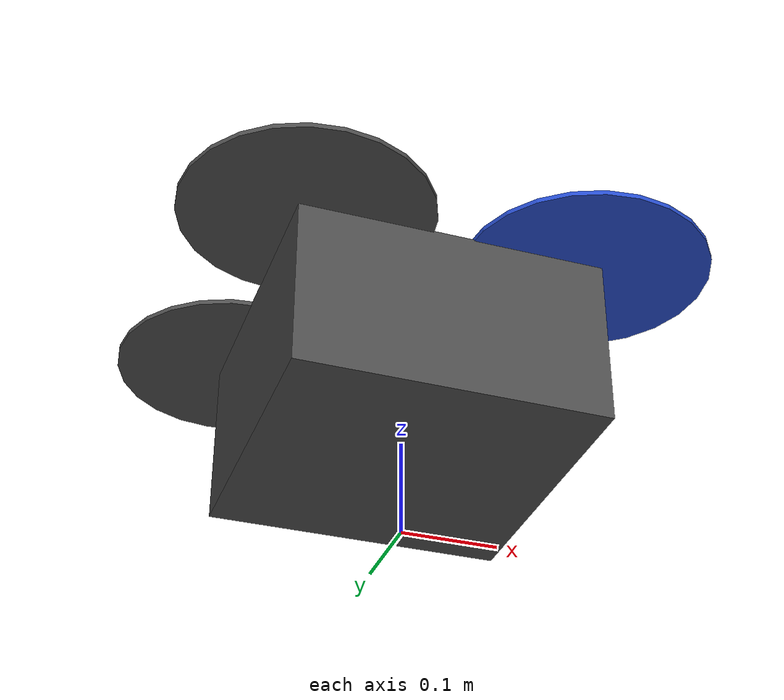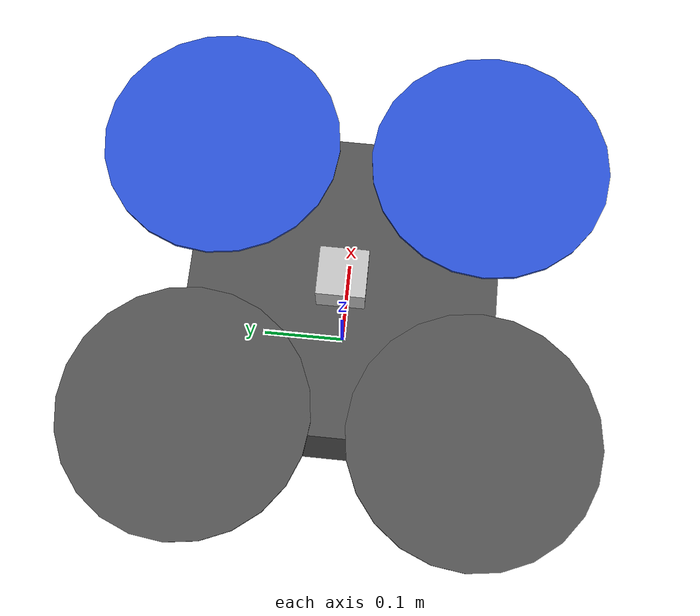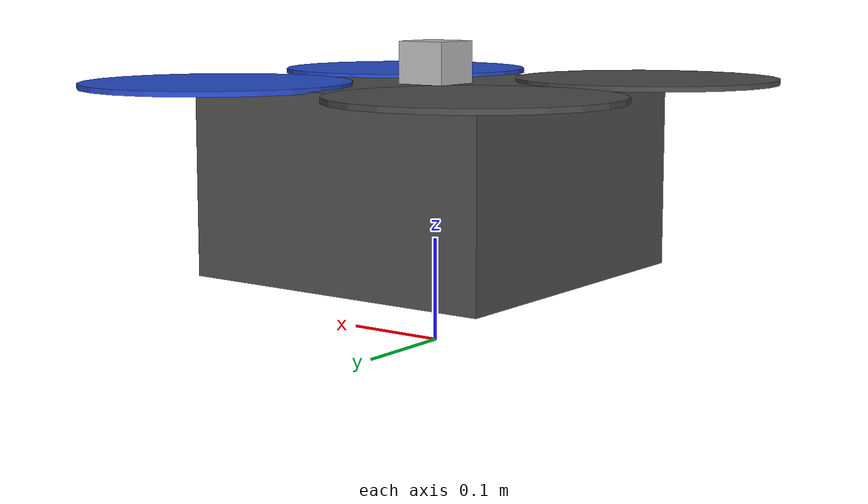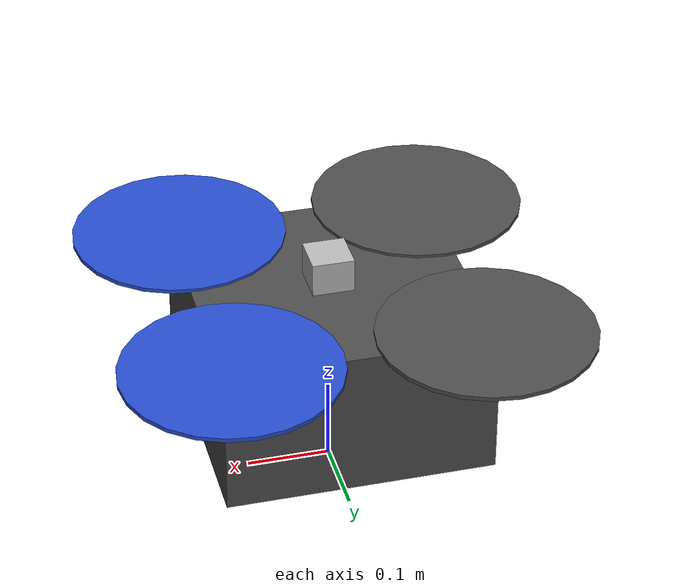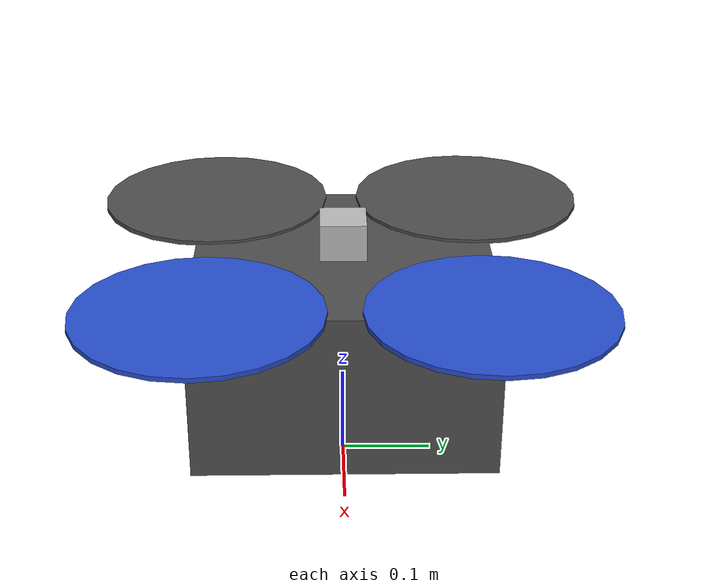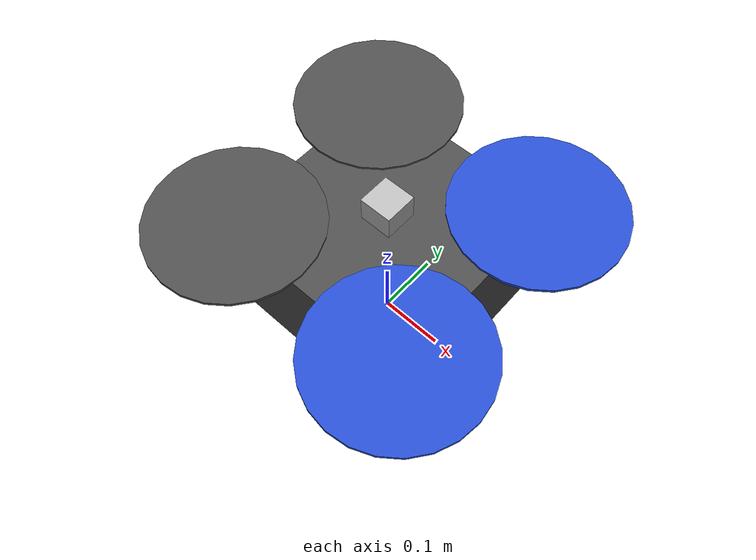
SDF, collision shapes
<sdf version='1.5'>
  <model name='solo'>
    <pose>0 0 0.2 0 0 0</pose>

    <!-- Solo body -->
    <link name='base_link'>
      <pose>0 0 0 0 0 0</pose>
      <inertial>
        <pose>0 0 0 0 0 0</pose>
        <mass>1.47</mass>
        <inertia>
          <ixx>0.011</ixx>
          <ixy>0</ixy>
          <ixz>0</ixz>
          <iyy>0.015</iyy>
          <iyz>0</iyz>
          <izz>0.021</izz>
        </inertia>
      </inertial>
      <collision name='base_link_inertia_collision'>
        <pose>0 0 -0.04 0 0 0</pose>
        <geometry>
          <box>
            <size>0.32 0.32 0.18</size>
          </box>
        </geometry>
        <surface>
          <contact>
            <ode>
              <min_depth>0.001</min_depth>
              <max_vel>0</max_vel>
            </ode>
          </contact>
          <friction>
            <ode/>
          </friction>
        </surface>
      </collision>
      <visual name='base_link_inertia_visual'>
        <pose>0 0 0 0 0 0</pose>
        <geometry>
          <mesh>
            <scale>1 1 1</scale>
            <uri>model://solo/meshes/solo.stl</uri>
          </mesh>
        </geometry>
        <material>
          <script>
            <name>Gazebo/DarkGrey</name>
            <uri>file://media/materials/scripts/gazebo.material</uri>
          </script>
        </material>
      </visual>
      <gravity>1</gravity>
      <velocity_decay/>
      <self_collide>0</self_collide>

      <!-- laser hokuyo -->

<!-- Laser lidar ya implementado -->

</link>
<link name='imu_link'>
  <pose>0 0 0 0 0 0</pose>
  <inertial>
    <pose>0 0 0 0 0 0</pose>
    <mass>0.015</mass>
    <inertia>
      <ixx>1e-05</ixx>
      <ixy>0</ixy>
      <ixz>0</ixz>
      <iyy>1e-05</iyy>
      <iyz>0</iyz>
      <izz>1e-05</izz>
    </inertia>
  </inertial>
</link>
<joint name='imu_joint' type='revolute'>
  <child>imu_link</child>
  <parent>base_link</parent>
  <axis>
    <xyz>1 0 0</xyz>
    <limit>
      <lower>0</lower>
      <upper>0</upper>
      <effort>0</effort>
      <velocity>0</velocity>
    </limit>
    <dynamics>
      <spring_reference>0</spring_reference>
      <spring_stiffness>0</spring_stiffness>
    </dynamics>
    <use_parent_model_frame>1</use_parent_model_frame>
  </axis>
</joint>
<link name='rotor_0'>
  <pose>0.14745 -0.14525 0.051 0 0 0</pose>
  <inertial>
    <pose>0 0 0 0 0 0</pose>
    <mass>0.005</mass>
    <inertia>
      <ixx>9.75e-07</ixx>
      <ixy>0</ixy>
      <ixz>0</ixz>
      <iyy>0.000273104</iyy>
      <iyz>0</iyz>
      <izz>0.000274004</izz>
    </inertia>
  </inertial>
  <collision name='rotor_0_collision'>
    <pose>0 0 0 0 0 0</pose>
    <geometry>
      <cylinder>
        <length>0.005</length>
        <radius>0.128</radius>
      </cylinder>
    </geometry>
    <surface>
      <contact>
        <ode/>
      </contact>
      <friction>
        <ode/>
      </friction>
    </surface>
  </collision>
  <visual name='rotor_0_visual'>
    <pose>-0.14745 -0.14525 -0.051 0 0 0</pose>
    <geometry>
      <mesh>
        <scale>1 1 1</scale>
        <uri>model://solo/meshes/solo_prop_ccw.stl</uri>
      </mesh>
    </geometry>
    <material>
      <script>
        <name>Gazebo/Blue</name>
        <uri>file://media/materials/scripts/gazebo.material</uri>
      </script>
    </material>
  </visual>
  <gravity>1</gravity>
  <velocity_decay/>
  <self_collide>0</self_collide>
</link>
<joint name='rotor_0_joint' type='revolute'>
  <child>rotor_0</child>
  <parent>base_link</parent>
  <axis>
    <xyz>0 0 1</xyz>
    <limit>
      <lower>-1e+16</lower>
      <upper>1e+16</upper>
    </limit>
    <dynamics>
      <spring_reference>0</spring_reference>
      <spring_stiffness>0</spring_stiffness>
    </dynamics>
    <use_parent_model_frame>1</use_parent_model_frame>
  </axis>
</joint>
<link name='rotor_1'>
  <pose>-0.14745 0.14525 0.051 0 0 0</pose>
  <inertial>
    <pose>0 0 0 0 0 0</pose>
    <mass>0.005</mass>
    <inertia>
      <ixx>9.75e-07</ixx>
      <ixy>0</ixy>
      <ixz>0</ixz>
      <iyy>0.000273104</iyy>
      <iyz>0</iyz>
      <izz>0.000274004</izz>
    </inertia>
  </inertial>
  <collision name='rotor_1_collision'>
    <pose>0 0 0 0 0 0</pose>
    <geometry>
      <cylinder>
        <length>0.005</length>
        <radius>0.128</radius>
      </cylinder>
    </geometry>
    <surface>
      <contact>
        <ode/>
      </contact>
      <friction>
        <ode/>
      </friction>
    </surface>
  </collision>
  <visual name='rotor_1_visual'>
    <pose>-0.14745 -0.14525 -0.051 0 0 0</pose>
    <geometry>
      <mesh>
        <scale>1 1 1</scale>
        <uri>model://solo/meshes/solo_prop_ccw.stl</uri>
      </mesh>
    </geometry>
    <material>
      <script>
        <name>Gazebo/DarkGrey</name>
        <uri>file://media/materials/scripts/gazebo.material</uri>
      </script>
    </material>
  </visual>
  <gravity>1</gravity>
  <velocity_decay/>
  <self_collide>0</self_collide>
</link>
<joint name='rotor_1_joint' type='revolute'>
  <child>rotor_1</child>
  <parent>base_link</parent>
  <axis>
    <xyz>0 0 1</xyz>
    <limit>
      <lower>-1e+16</lower>
      <upper>1e+16</upper>
    </limit>
    <dynamics>
      <spring_reference>0</spring_reference>
      <spring_stiffness>0</spring_stiffness>
    </dynamics>
    <use_parent_model_frame>1</use_parent_model_frame>
  </axis>
</joint>
<link name='rotor_2'>
  <pose>0.14745 0.14525 0.051 0 0 0</pose>
  <inertial>
    <pose>0 0 0 0 0 0</pose>
    <mass>0.005</mass>
    <inertia>
      <ixx>9.75e-07</ixx>
      <ixy>0</ixy>
      <ixz>0</ixz>
      <iyy>0.000273104</iyy>
      <iyz>0</iyz>
      <izz>0.000274004</izz>
    </inertia>
  </inertial>
  <collision name='rotor_2_collision'>
    <pose>0 0 0 0 0 0</pose>
    <geometry>
      <cylinder>
        <length>0.005</length>
        <radius>0.128</radius>
      </cylinder>
    </geometry>
    <surface>
      <contact>
        <ode/>
      </contact>
      <friction>
        <ode/>
      </friction>
    </surface>
  </collision>
  <visual name='rotor_2_visual'>
    <pose>-0.14745 0.14525 -0.051 0 0 0</pose>
    <geometry>
      <mesh>
        <scale>1 1 1</scale>
        <uri>model://solo/meshes/solo_prop_cw.stl</uri>
      </mesh>
    </geometry>
    <material>
      <script>
        <name>Gazebo/Blue</name>
        <uri>file://media/materials/scripts/gazebo.material</uri>
      </script>
    </material>
  </visual>
  <gravity>1</gravity>
  <velocity_decay/>
  <self_collide>0</self_collide>
</link>
<joint name='rotor_2_joint' type='revolute'>
  <child>rotor_2</child>
  <parent>base_link</parent>
  <axis>
    <xyz>0 0 1</xyz>
    <limit>
      <lower>-1e+16</lower>
      <upper>1e+16</upper>
    </limit>
    <dynamics>
      <spring_reference>0</spring_reference>
      <spring_stiffness>0</spring_stiffness>
    </dynamics>
    <use_parent_model_frame>1</use_parent_model_frame>
  </axis>
</joint>
<link name='rotor_3'>
  <pose>-0.14745 -0.14525 0.051 0 0 0</pose>
  <inertial>
    <pose>0 0 0 0 0 0</pose>
    <mass>0.005</mass>
    <inertia>
      <ixx>9.75e-07</ixx>
      <ixy>0</ixy>
      <ixz>0</ixz>
      <iyy>0.000273104</iyy>
      <iyz>0</iyz>
      <izz>0.000274004</izz>
    </inertia>
  </inertial>
  <collision name='rotor_3_collision'>
    <pose>0 0 0 0 0 0</pose>
    <geometry>
      <cylinder>
        <length>0.005</length>
        <radius>0.128</radius>
      </cylinder>
    </geometry>
    <surface>
      <contact>
        <ode/>
      </contact>
      <friction>
        <ode/>
      </friction>
    </surface>
  </collision>
  <visual name='rotor_3_visual'>
    <pose>-0.14745 0.14525 -0.051 0 0 0</pose>
    <geometry>
      <mesh>
        <scale>1 1 1</scale>
        <uri>model://solo/meshes/solo_prop_cw.stl</uri>
      </mesh>
    </geometry>
    <material>
      <script>
        <name>Gazebo/DarkGrey</name>
        <uri>file://media/materials/scripts/gazebo.material</uri>
      </script>
    </material>
  </visual>
  <gravity>1</gravity>
  <velocity_decay/>
  <self_collide>0</self_collide>
</link>
<joint name='rotor_3_joint' type='revolute'>
  <child>rotor_3</child>
  <parent>base_link</parent>
  <axis>
    <xyz>0 0 1</xyz>
    <limit>
      <lower>-1e+16</lower>
      <upper>1e+16</upper>
    </limit>
    <dynamics>
      <spring_reference>0</spring_reference>
      <spring_stiffness>0</spring_stiffness>
    </dynamics>
    <use_parent_model_frame>1</use_parent_model_frame>
  </axis>
</joint>

<link name="hokuyo_base">
  <pose>0 0 0.07 0 0 0</pose>
  <inertial>
    <mass>0.1</mass>
    <inertia>
      <ixx>0.0001087473</ixx>
      <iyy>0.0001087473</iyy>
      <izz>0.0001092437</izz>
      <ixy>0</ixy>
      <ixz>0</ixz>
      <iyz>0</iyz>
    </inertia>
  </inertial>

  <visual name="visual">
    <geometry>
      <mesh>
        <uri>model://solo/meshes/hokuyo.dae</uri>
      </mesh>
    </geometry>
  </visual>

  <collision name="collision-base">
    <pose>0.0 0 0 0 0 0</pose>
    <geometry>
      <box>
        <size>0.05 0.05 0.041</size>
      </box>
    </geometry>
  </collision>
</link>
<link name="hokuyo_top">
  <pose>0 0 0.07 0 0 0</pose>
  <inertial>
    <mass>0.1</mass>
    <inertia>
      <ixx>0.0001087473</ixx>
      <iyy>0.0001087473</iyy>
      <izz>0.0001092437</izz>
      <ixy>0</ixy>
      <ixz>0</ixz>
      <iyz>0</iyz>
    </inertia>
  </inertial>
  <collision name="collision-top">
    <pose>0 0 0 0 0 0</pose>
    <geometry>
      <cylinder>
        <radius>0.021</radius>
        <length>0.029</length>
      </cylinder>
    </geometry>
  </collision>

  <sensor name="laser" type="ray">
    <pose>-0.05 0 0.036 0 0 0</pose>
    <ray>
      <scan>
        <horizontal>
          <samples>1</samples>
          <resolution>1</resolution>
          <min_angle>-0</min_angle>
          <max_angle>0</max_angle>
        </horizontal>
      </scan>
      <range>
        <min>0.3</min>
        <max>40</max>
        <resolution>0.01</resolution>
      </range>
      <noise>
        <type>gaussian</type>
        <mean>0</mean>
        <stddev>0.02</stddev>
      </noise>
    </ray>
    <plugin name="LaserPlugin" filename="libgazebo_sweep_v1_plugin.so" />
    <always_on>1</always_on>
    <update_rate>5000</update_rate>
    <visualize>true</visualize>
  </sensor>
</link>

<joint type="revolute" name="joint">
  <pose>0 0 0 0 0 0</pose>
  <parent>hokuyo_base</parent>
  <child>hokuyo_top</child>
  <axis>
    <xyz>0 0 1</xyz>
    <limit>
      <lower>-10000000000000000</lower>
      <upper>10000000000000000</upper>
    </limit>
  </axis>
</joint>

<joint name='hokuyo_joint' type='fixed'>
  <child>hokuyo_base</child>
  <parent>base_link</parent>
  <axis>
    <limit>
      <lower>-1e+16</lower>
      <upper>1e+16</upper>
    </limit>
    <dynamics>
      <spring_reference>0</spring_reference>
      <spring_stiffness>0</spring_stiffness>
    </dynamics>
    <use_parent_model_frame>1</use_parent_model_frame>
  </axis>
</joint>

<plugin name="rotate_ray" filename="libgazebo_rotate_ray_plugin.so">
  <velocity>15</velocity>
</plugin>
<plugin name='rosbag' filename='librotors_gazebo_multirotor_base_plugin.so'>
  <robotNamespace></robotNamespace>
  <linkName>base_link</linkName>
  <rotorVelocitySlowdownSim>10</rotorVelocitySlowdownSim>
</plugin>
<plugin name='front_right_motor_model' filename='librotors_gazebo_motor_model.so'>
  <robotNamespace></robotNamespace>
  <jointName>rotor_0_joint</jointName>
  <linkName>rotor_0</linkName>
  <turningDirection>ccw</turningDirection>
  <timeConstantUp>0.0125</timeConstantUp>
  <timeConstantDown>0.025</timeConstantDown>
  <maxRotVelocity>1500</maxRotVelocity>
  <motorConstant>8.54858e-06</motorConstant>
  <momentConstant>0.06</momentConstant>
  <commandSubTopic>/gazebo/command/motor_speed</commandSubTopic>
  <motorNumber>0</motorNumber>
  <rotorDragCoefficient>0.000806428</rotorDragCoefficient>
  <rollingMomentCoefficient>1e-06</rollingMomentCoefficient>
  <motorSpeedPubTopic>/motor_speed/0</motorSpeedPubTopic>
  <rotorVelocitySlowdownSim>10</rotorVelocitySlowdownSim>
</plugin>
<plugin name='back_left_motor_model' filename='librotors_gazebo_motor_model.so'>
  <robotNamespace></robotNamespace>
  <jointName>rotor_1_joint</jointName>
  <linkName>rotor_1</linkName>
  <turningDirection>ccw</turningDirection>
  <timeConstantUp>0.0125</timeConstantUp>
  <timeConstantDown>0.025</timeConstantDown>
  <maxRotVelocity>1500</maxRotVelocity>
  <motorConstant>8.54858e-06</motorConstant>
  <momentConstant>0.06</momentConstant>
  <commandSubTopic>/gazebo/command/motor_speed</commandSubTopic>
  <motorNumber>1</motorNumber>
  <rotorDragCoefficient>0.000806428</rotorDragCoefficient>
  <rollingMomentCoefficient>1e-06</rollingMomentCoefficient>
  <motorSpeedPubTopic>/motor_speed/1</motorSpeedPubTopic>
  <rotorVelocitySlowdownSim>10</rotorVelocitySlowdownSim>
</plugin>
<plugin name='front_left_motor_model' filename='librotors_gazebo_motor_model.so'>
  <robotNamespace></robotNamespace>
  <jointName>rotor_2_joint</jointName>
  <linkName>rotor_2</linkName>
  <turningDirection>cw</turningDirection>
  <timeConstantUp>0.0125</timeConstantUp>
  <timeConstantDown>0.025</timeConstantDown>
  <maxRotVelocity>1500</maxRotVelocity>
  <motorConstant>8.54858e-06</motorConstant>
  <momentConstant>0.06</momentConstant>
  <commandSubTopic>/gazebo/command/motor_speed</commandSubTopic>
  <motorNumber>2</motorNumber>
  <rotorDragCoefficient>0.000806428</rotorDragCoefficient>
  <rollingMomentCoefficient>1e-06</rollingMomentCoefficient>
  <motorSpeedPubTopic>/motor_speed/2</motorSpeedPubTopic>
  <rotorVelocitySlowdownSim>10</rotorVelocitySlowdownSim>
</plugin>
<plugin name='back_right_motor_model' filename='librotors_gazebo_motor_model.so'>
  <robotNamespace></robotNamespace>
  <jointName>rotor_3_joint</jointName>
  <linkName>rotor_3</linkName>
  <turningDirection>cw</turningDirection>
  <timeConstantUp>0.0125</timeConstantUp>
  <timeConstantDown>0.025</timeConstantDown>
  <maxRotVelocity>1500</maxRotVelocity>
  <motorConstant>8.54858e-06</motorConstant>
  <momentConstant>0.06</momentConstant>
  <commandSubTopic>/gazebo/command/motor_speed</commandSubTopic>
  <motorNumber>3</motorNumber>
  <rotorDragCoefficient>0.000806428</rotorDragCoefficient>
  <rollingMomentCoefficient>1e-06</rollingMomentCoefficient>
  <motorSpeedPubTopic>/motor_speed/3</motorSpeedPubTopic>
  <rotorVelocitySlowdownSim>10</rotorVelocitySlowdownSim>
</plugin>
<plugin name="gps_plugin" filename="libgazebo_gps_plugin.so">
  <robotNamespace></robotNamespace>
  <gpsNoise>true</gpsNoise>
</plugin>
<plugin name='mavlink_interface' filename='librotors_gazebo_mavlink_interface.so'>
  <robotNamespace/>
  <imuSubTopic>/imu</imuSubTopic>
  <gpsSubTopic>/gps</gpsSubTopic>
  <mavlink_addr>INADDR_ANY</mavlink_addr>
  <mavlink_udp_port>14560</mavlink_udp_port>
  <serialEnabled>false</serialEnabled>
  <serialDevice>/dev/ttyACM0</serialDevice>
  <baudRate>921600</baudRate>
  <qgc_addr>INADDR_ANY</qgc_addr>
  <qgc_udp_port>14550</qgc_udp_port>
  <hil_mode>false</hil_mode>
  <hil_state_level>false</hil_state_level>
  <motorSpeedCommandPubTopic>/gazebo/command/motor_speed</motorSpeedCommandPubTopic>
  <control_channels>
    <channel name='rotor1'>
      <input_index>0</input_index>
      <input_offset>0</input_offset>
      <input_scaling>1200</input_scaling>
      <zero_position_disarmed>0</zero_position_disarmed>
      <zero_position_armed>100</zero_position_armed>
      <joint_control_type>velocity</joint_control_type>
    </channel>
    <channel name='rotor2'>
      <input_index>1</input_index>
      <input_offset>0</input_offset>
      <input_scaling>1200</input_scaling>
      <zero_position_disarmed>0</zero_position_disarmed>
      <zero_position_armed>100</zero_position_armed>
      <joint_control_type>velocity</joint_control_type>
    </channel>
    <channel name='rotor3'>
      <input_index>2</input_index>
      <input_offset>0</input_offset>
      <input_scaling>1200</input_scaling>
      <zero_position_disarmed>0</zero_position_disarmed>
      <zero_position_armed>100</zero_position_armed>
      <joint_control_type>velocity</joint_control_type>
    </channel>
    <channel name='rotor4'>
      <input_index>3</input_index>
      <input_offset>0</input_offset>
      <input_scaling>1200</input_scaling>
      <zero_position_disarmed>0</zero_position_disarmed>
      <zero_position_armed>100</zero_position_armed>
      <joint_control_type>velocity</joint_control_type>
    </channel>
  </control_channels>
</plugin>
<static>0</static>
<plugin name='rotors_gazebo_imu_plugin' filename='librotors_gazebo_imu_plugin.so'>
  <robotNamespace></robotNamespace>
  <linkName>imu_link</linkName>
  <imuTopic>/imu</imuTopic>
  <gyroscopeNoiseDensity>0.0003394</gyroscopeNoiseDensity>
  <gyroscopeRandomWalk>3.8785e-05</gyroscopeRandomWalk>
  <gyroscopeBiasCorrelationTime>1000.0</gyroscopeBiasCorrelationTime>
  <gyroscopeTurnOnBiasSigma>0.0087</gyroscopeTurnOnBiasSigma>
  <accelerometerNoiseDensity>0.004</accelerometerNoiseDensity>
  <accelerometerRandomWalk>0.006</accelerometerRandomWalk>
  <accelerometerBiasCorrelationTime>300.0</accelerometerBiasCorrelationTime>
  <accelerometerTurnOnBiasSigma>0.196</accelerometerTurnOnBiasSigma>
</plugin>
</model>
</sdf>
